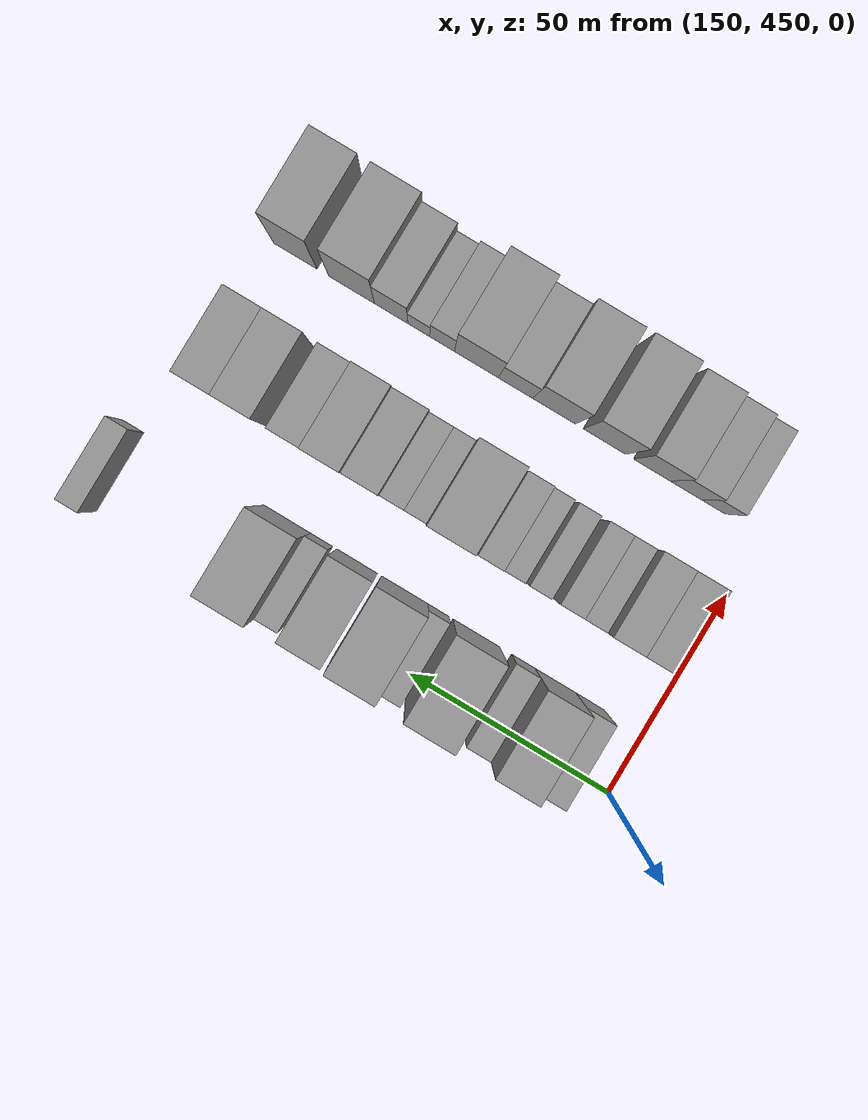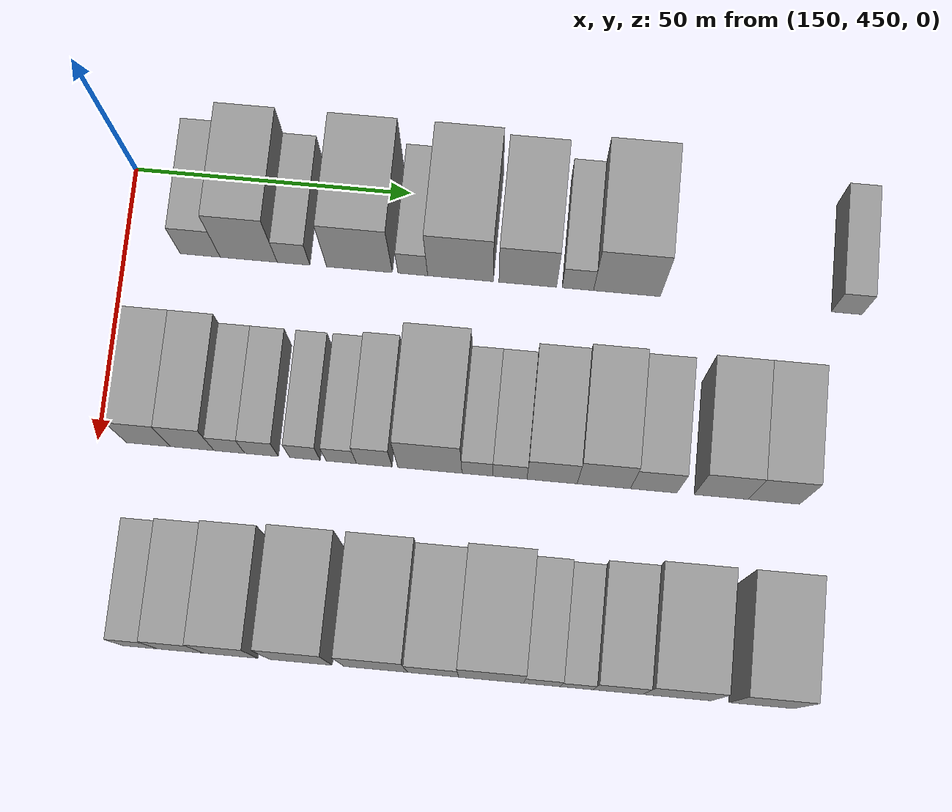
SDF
<sdf version="1.6">
 <world name="default">
  <model name="building_485">
   <static>1</static>
   <pose>155.0000 463.5801 0 0.000000 0.000000 0.000000</pose>
   <link name="link">
    <pose>0 0 7.50 0 0 0</pose>
    <collision name="collision"><geometry><box><size>20.0000 7.2073 15.0000</size></box></geometry></collision>
    <visual name="visual">
     <cast_shadows>0</cast_shadows>
     <geometry><box><size>20.0000 7.2073 15.0000</size></box></geometry>
     <material>
      <script>
       <uri>model://grey_wall/materials/scripts</uri>
       <uri>model://grey_wall/materials/textures</uri>
       <name>vrc/grey_wall</name>
      </script>
     </material>
    </visual>
   </link>
  </model>
  <model name="building_486">
   <static>1</static>
   <pose>155.0000 472.3223 0 0.000000 0.000000 0.000000</pose>
   <link name="link">
    <pose>0 0 12.00 0 0 0</pose>
    <collision name="collision"><geometry><box><size>20.0000 10.2771 24.0000</size></box></geometry></collision>
    <visual name="visual">
     <cast_shadows>0</cast_shadows>
     <geometry><box><size>20.0000 10.2771 24.0000</size></box></geometry>
     <material>
      <script>
       <uri>model://grey_wall/materials/scripts</uri>
       <uri>model://grey_wall/materials/textures</uri>
       <name>vrc/grey_wall</name>
      </script>
     </material>
    </visual>
   </link>
  </model>
  <model name="building_487">
   <static>1</static>
   <pose>155.0000 480.4054 0 0.000000 0.000000 0.000000</pose>
   <link name="link">
    <pose>0 0 6.00 0 0 0</pose>
    <collision name="collision"><geometry><box><size>20.0000 5.8889 12.0000</size></box></geometry></collision>
    <visual name="visual">
     <cast_shadows>0</cast_shadows>
     <geometry><box><size>20.0000 5.8889 12.0000</size></box></geometry>
     <material>
      <script>
       <uri>model://grey_wall/materials/scripts</uri>
       <uri>model://grey_wall/materials/textures</uri>
       <name>vrc/grey_wall</name>
      </script>
     </material>
    </visual>
   </link>
  </model>
  <model name="building_488">
   <static>1</static>
   <pose>155.0000 492.2635 0 0.000000 0.000000 0.000000</pose>
   <link name="link">
    <pose>0 0 12.00 0 0 0</pose>
    <collision name="collision"><geometry><box><size>20.0000 11.8274 24.0000</size></box></geometry></collision>
    <visual name="visual">
     <cast_shadows>0</cast_shadows>
     <geometry><box><size>20.0000 11.8274 24.0000</size></box></geometry>
     <material>
      <script>
       <uri>model://grey_wall/materials/scripts</uri>
       <uri>model://grey_wall/materials/textures</uri>
       <name>vrc/grey_wall</name>
      </script>
     </material>
    </visual>
   </link>
  </model>
  <model name="building_489">
   <static>1</static>
   <pose>155.0000 501.8370 0 0.000000 0.000000 0.000000</pose>
   <link name="link">
    <pose>0 0 6.00 0 0 0</pose>
    <collision name="collision"><geometry><box><size>20.0000 5.3195 12.0000</size></box></geometry></collision>
    <visual name="visual">
     <cast_shadows>0</cast_shadows>
     <geometry><box><size>20.0000 5.3195 12.0000</size></box></geometry>
     <material>
      <script>
       <uri>model://grey_wall/materials/scripts</uri>
       <uri>model://grey_wall/materials/textures</uri>
       <name>vrc/grey_wall</name>
      </script>
     </material>
    </visual>
   </link>
  </model>
  <model name="building_490">
   <static>1</static>
   <pose>155.0000 510.3837 0 0.000000 0.000000 0.000000</pose>
   <link name="link">
    <pose>0 0 12.00 0 0 0</pose>
    <collision name="collision"><geometry><box><size>20.0000 11.7738 24.0000</size></box></geometry></collision>
    <visual name="visual">
     <cast_shadows>0</cast_shadows>
     <geometry><box><size>20.0000 11.7738 24.0000</size></box></geometry>
     <material>
      <script>
       <uri>model://grey_wall/materials/scripts</uri>
       <uri>model://grey_wall/materials/textures</uri>
       <name>vrc/grey_wall</name>
      </script>
     </material>
    </visual>
   </link>
  </model>
  <model name="building_491">
   <static>1</static>
   <pose>155.0000 522.4294 0 0.000000 0.000000 0.000000</pose>
   <link name="link">
    <pose>0 0 10.50 0 0 0</pose>
    <collision name="collision"><geometry><box><size>20.0000 10.3175 21.0000</size></box></geometry></collision>
    <visual name="visual">
     <cast_shadows>0</cast_shadows>
     <geometry><box><size>20.0000 10.3175 21.0000</size></box></geometry>
     <material>
      <script>
       <uri>model://grey_wall/materials/scripts</uri>
       <uri>model://grey_wall/materials/textures</uri>
       <name>vrc/grey_wall</name>
      </script>
     </material>
    </visual>
   </link>
  </model>
  <model name="building_492">
   <static>1</static>
   <pose>155.0000 531.3951 0 0.000000 0.000000 0.000000</pose>
   <link name="link">
    <pose>0 0 6.00 0 0 0</pose>
    <collision name="collision"><geometry><box><size>20.0000 5.6139 12.0000</size></box></geometry></collision>
    <visual name="visual">
     <cast_shadows>0</cast_shadows>
     <geometry><box><size>20.0000 5.6139 12.0000</size></box></geometry>
     <material>
      <script>
       <uri>model://grey_wall/materials/scripts</uri>
       <uri>model://grey_wall/materials/textures</uri>
       <name>vrc/grey_wall</name>
      </script>
     </material>
    </visual>
   </link>
  </model>
  <model name="building_493">
   <static>1</static>
   <pose>155.0000 540.1591 0 0.000000 0.000000 0.000000</pose>
   <link name="link">
    <pose>0 0 12.00 0 0 0</pose>
    <collision name="collision"><geometry><box><size>20.0000 11.9141 24.0000</size></box></geometry></collision>
    <visual name="visual">
     <cast_shadows>0</cast_shadows>
     <geometry><box><size>20.0000 11.9141 24.0000</size></box></geometry>
     <material>
      <script>
       <uri>model://grey_wall/materials/scripts</uri>
       <uri>model://grey_wall/materials/textures</uri>
       <name>vrc/grey_wall</name>
      </script>
     </material>
    </visual>
   </link>
  </model>
  <model name="building_494">
   <static>1</static>
   <pose>155.0000 579.3486 0 0.000000 0.000000 0.000000</pose>
   <link name="link">
    <pose>0 0 6.00 0 0 0</pose>
    <collision name="collision"><geometry><box><size>20.0000 5.4883 12.0000</size></box></geometry></collision>
    <visual name="visual">
     <cast_shadows>0</cast_shadows>
     <geometry><box><size>20.0000 5.4883 12.0000</size></box></geometry>
     <material>
      <script>
       <uri>model://grey_wall/materials/scripts</uri>
       <uri>model://grey_wall/materials/textures</uri>
       <name>vrc/grey_wall</name>
      </script>
     </material>
    </visual>
   </link>
  </model>
  <model name="building_606">
   <static>1</static>
   <pose>190.0000 458.9555 0 0.000000 0.000000 0.000000</pose>
   <link name="link">
    <pose>0 0 9.00 0 0 0</pose>
    <collision name="collision"><geometry><box><size>20.0000 7.8009 18.0000</size></box></geometry></collision>
    <visual name="visual">
     <cast_shadows>0</cast_shadows>
     <geometry><box><size>20.0000 7.8009 18.0000</size></box></geometry>
     <material>
      <script>
       <uri>model://grey_wall/materials/scripts</uri>
       <uri>model://grey_wall/materials/textures</uri>
       <name>vrc/grey_wall</name>
      </script>
     </material>
    </visual>
   </link>
  </model>
  <model name="building_607">
   <static>1</static>
   <pose>190.0000 466.6846 0 0.000000 0.000000 0.000000</pose>
   <link name="link">
    <pose>0 0 9.00 0 0 0</pose>
    <collision name="collision"><geometry><box><size>20.0000 7.6573 18.0000</size></box></geometry></collision>
    <visual name="visual">
     <cast_shadows>0</cast_shadows>
     <geometry><box><size>20.0000 7.6573 18.0000</size></box></geometry>
     <material>
      <script>
       <uri>model://grey_wall/materials/scripts</uri>
       <uri>model://grey_wall/materials/textures</uri>
       <name>vrc/grey_wall</name>
      </script>
     </material>
    </visual>
   </link>
  </model>
  <model name="building_608">
   <static>1</static>
   <pose>190.0000 473.2176 0 0.000000 0.000000 0.000000</pose>
   <link name="link">
    <pose>0 0 6.00 0 0 0</pose>
    <collision name="collision"><geometry><box><size>20.0000 5.4086 12.0000</size></box></geometry></collision>
    <visual name="visual">
     <cast_shadows>0</cast_shadows>
     <geometry><box><size>20.0000 5.4086 12.0000</size></box></geometry>
     <material>
      <script>
       <uri>model://grey_wall/materials/scripts</uri>
       <uri>model://grey_wall/materials/textures</uri>
       <name>vrc/grey_wall</name>
      </script>
     </material>
    </visual>
   </link>
  </model>
  <model name="building_609">
   <static>1</static>
   <pose>190.0000 478.8675 0 0.000000 0.000000 0.000000</pose>
   <link name="link">
    <pose>0 0 6.00 0 0 0</pose>
    <collision name="collision"><geometry><box><size>20.0000 5.8913 12.0000</size></box></geometry></collision>
    <visual name="visual">
     <cast_shadows>0</cast_shadows>
     <geometry><box><size>20.0000 5.8913 12.0000</size></box></geometry>
     <material>
      <script>
       <uri>model://grey_wall/materials/scripts</uri>
       <uri>model://grey_wall/materials/textures</uri>
       <name>vrc/grey_wall</name>
      </script>
     </material>
    </visual>
   </link>
  </model>
  <model name="building_610">
   <static>1</static>
   <pose>190.0000 486.4945 0 0.000000 0.000000 0.000000</pose>
   <link name="link">
    <pose>0 0 6.00 0 0 0</pose>
    <collision name="collision"><geometry><box><size>20.0000 5.3626 12.0000</size></box></geometry></collision>
    <visual name="visual">
     <cast_shadows>0</cast_shadows>
     <geometry><box><size>20.0000 5.3626 12.0000</size></box></geometry>
     <material>
      <script>
       <uri>model://grey_wall/materials/scripts</uri>
       <uri>model://grey_wall/materials/textures</uri>
       <name>vrc/grey_wall</name>
      </script>
     </material>
    </visual>
   </link>
  </model>
  <model name="building_611">
   <static>1</static>
   <pose>190.0000 492.8447 0 0.000000 0.000000 0.000000</pose>
   <link name="link">
    <pose>0 0 6.00 0 0 0</pose>
    <collision name="collision"><geometry><box><size>20.0000 5.3379 12.0000</size></box></geometry></collision>
    <visual name="visual">
     <cast_shadows>0</cast_shadows>
     <geometry><box><size>20.0000 5.3379 12.0000</size></box></geometry>
     <material>
      <script>
       <uri>model://grey_wall/materials/scripts</uri>
       <uri>model://grey_wall/materials/textures</uri>
       <name>vrc/grey_wall</name>
      </script>
     </material>
    </visual>
   </link>
  </model>
  <model name="building_612">
   <static>1</static>
   <pose>190.0000 498.6452 0 0.000000 0.000000 0.000000</pose>
   <link name="link">
    <pose>0 0 7.50 0 0 0</pose>
    <collision name="collision"><geometry><box><size>20.0000 6.2629 15.0000</size></box></geometry></collision>
    <visual name="visual">
     <cast_shadows>0</cast_shadows>
     <geometry><box><size>20.0000 6.2629 15.0000</size></box></geometry>
     <material>
      <script>
       <uri>model://grey_wall/materials/scripts</uri>
       <uri>model://grey_wall/materials/textures</uri>
       <name>vrc/grey_wall</name>
      </script>
     </material>
    </visual>
   </link>
  </model>
  <model name="building_613">
   <static>1</static>
   <pose>190.0000 508.3809 0 0.000000 0.000000 0.000000</pose>
   <link name="link">
    <pose>0 0 12.00 0 0 0</pose>
    <collision name="collision"><geometry><box><size>20.0000 11.2085 24.0000</size></box></geometry></collision>
    <visual name="visual">
     <cast_shadows>0</cast_shadows>
     <geometry><box><size>20.0000 11.2085 24.0000</size></box></geometry>
     <material>
      <script>
       <uri>model://grey_wall/materials/scripts</uri>
       <uri>model://grey_wall/materials/textures</uri>
       <name>vrc/grey_wall</name>
      </script>
     </material>
    </visual>
   </link>
  </model>
  <model name="building_614">
   <static>1</static>
   <pose>190.0000 516.6739 0 0.000000 0.000000 0.000000</pose>
   <link name="link">
    <pose>0 0 6.00 0 0 0</pose>
    <collision name="collision"><geometry><box><size>20.0000 5.3775 12.0000</size></box></geometry></collision>
    <visual name="visual">
     <cast_shadows>0</cast_shadows>
     <geometry><box><size>20.0000 5.3775 12.0000</size></box></geometry>
     <material>
      <script>
       <uri>model://grey_wall/materials/scripts</uri>
       <uri>model://grey_wall/materials/textures</uri>
       <name>vrc/grey_wall</name>
      </script>
     </material>
    </visual>
   </link>
  </model>
  <model name="building_615">
   <static>1</static>
   <pose>190.0000 522.3495 0 0.000000 0.000000 0.000000</pose>
   <link name="link">
    <pose>0 0 6.00 0 0 0</pose>
    <collision name="collision"><geometry><box><size>20.0000 5.9738 12.0000</size></box></geometry></collision>
    <visual name="visual">
     <cast_shadows>0</cast_shadows>
     <geometry><box><size>20.0000 5.9738 12.0000</size></box></geometry>
     <material>
      <script>
       <uri>model://grey_wall/materials/scripts</uri>
       <uri>model://grey_wall/materials/textures</uri>
       <name>vrc/grey_wall</name>
      </script>
     </material>
    </visual>
   </link>
  </model>
  <model name="building_616">
   <static>1</static>
   <pose>190.0000 529.7157 0 0.000000 0.000000 0.000000</pose>
   <link name="link">
    <pose>0 0 9.00 0 0 0</pose>
    <collision name="collision"><geometry><box><size>20.0000 8.7585 18.0000</size></box></geometry></collision>
    <visual name="visual">
     <cast_shadows>0</cast_shadows>
     <geometry><box><size>20.0000 8.7585 18.0000</size></box></geometry>
     <material>
      <script>
       <uri>model://grey_wall/materials/scripts</uri>
       <uri>model://grey_wall/materials/textures</uri>
       <name>vrc/grey_wall</name>
      </script>
     </material>
    </visual>
   </link>
  </model>
  <model name="building_617">
   <static>1</static>
   <pose>190.0000 538.7590 0 0.000000 0.000000 0.000000</pose>
   <link name="link">
    <pose>0 0 10.50 0 0 0</pose>
    <collision name="collision"><geometry><box><size>20.0000 9.3282 21.0000</size></box></geometry></collision>
    <visual name="visual">
     <cast_shadows>0</cast_shadows>
     <geometry><box><size>20.0000 9.3282 21.0000</size></box></geometry>
     <material>
      <script>
       <uri>model://grey_wall/materials/scripts</uri>
       <uri>model://grey_wall/materials/textures</uri>
       <name>vrc/grey_wall</name>
      </script>
     </material>
    </visual>
   </link>
  </model>
  <model name="building_618">
   <static>1</static>
   <pose>190.0000 547.4751 0 0.000000 0.000000 0.000000</pose>
   <link name="link">
    <pose>0 0 9.00 0 0 0</pose>
    <collision name="collision"><geometry><box><size>20.0000 8.1040 18.0000</size></box></geometry></collision>
    <visual name="visual">
     <cast_shadows>0</cast_shadows>
     <geometry><box><size>20.0000 8.1040 18.0000</size></box></geometry>
     <material>
      <script>
       <uri>model://grey_wall/materials/scripts</uri>
       <uri>model://grey_wall/materials/textures</uri>
       <name>vrc/grey_wall</name>
      </script>
     </material>
    </visual>
   </link>
  </model>
  <model name="building_619">
   <static>1</static>
   <pose>190.0000 559.2223 0 0.000000 0.000000 0.000000</pose>
   <link name="link">
    <pose>0 0 10.50 0 0 0</pose>
    <collision name="collision"><geometry><box><size>20.0000 9.3904 21.0000</size></box></geometry></collision>
    <visual name="visual">
     <cast_shadows>0</cast_shadows>
     <geometry><box><size>20.0000 9.3904 21.0000</size></box></geometry>
     <material>
      <script>
       <uri>model://grey_wall/materials/scripts</uri>
       <uri>model://grey_wall/materials/textures</uri>
       <name>vrc/grey_wall</name>
      </script>
     </material>
    </visual>
   </link>
  </model>
  <model name="building_620">
   <static>1</static>
   <pose>190.0000 568.4161 0 0.000000 0.000000 0.000000</pose>
   <link name="link">
    <pose>0 0 10.50 0 0 0</pose>
    <collision name="collision"><geometry><box><size>20.0000 8.9972 21.0000</size></box></geometry></collision>
    <visual name="visual">
     <cast_shadows>0</cast_shadows>
     <geometry><box><size>20.0000 8.9972 21.0000</size></box></geometry>
     <material>
      <script>
       <uri>model://grey_wall/materials/scripts</uri>
       <uri>model://grey_wall/materials/textures</uri>
       <name>vrc/grey_wall</name>
      </script>
     </material>
    </visual>
   </link>
  </model>
  <model name="building_734">
   <static>1</static>
   <pose>225.0000 462.1828 0 0.000000 0.000000 0.000000</pose>
   <link name="link">
    <pose>0 0 7.50 0 0 0</pose>
    <collision name="collision"><geometry><box><size>20.0000 6.0497 15.0000</size></box></geometry></collision>
    <visual name="visual">
     <cast_shadows>0</cast_shadows>
     <geometry><box><size>20.0000 6.0497 15.0000</size></box></geometry>
     <material>
      <script>
       <uri>model://grey_wall/materials/scripts</uri>
       <uri>model://grey_wall/materials/textures</uri>
       <name>vrc/grey_wall</name>
      </script>
     </material>
    </visual>
   </link>
  </model>
  <model name="building_735">
   <static>1</static>
   <pose>225.0000 469.1781 0 0.000000 0.000000 0.000000</pose>
   <link name="link">
    <pose>0 0 9.00 0 0 0</pose>
    <collision name="collision"><geometry><box><size>20.0000 7.9407 18.0000</size></box></geometry></collision>
    <visual name="visual">
     <cast_shadows>0</cast_shadows>
     <geometry><box><size>20.0000 7.9407 18.0000</size></box></geometry>
     <material>
      <script>
       <uri>model://grey_wall/materials/scripts</uri>
       <uri>model://grey_wall/materials/textures</uri>
       <name>vrc/grey_wall</name>
      </script>
     </material>
    </visual>
   </link>
  </model>
  <model name="building_736">
   <static>1</static>
   <pose>225.0000 477.7752 0 0.000000 0.000000 0.000000</pose>
   <link name="link">
    <pose>0 0 10.50 0 0 0</pose>
    <collision name="collision"><geometry><box><size>20.0000 9.2535 21.0000</size></box></geometry></collision>
    <visual name="visual">
     <cast_shadows>0</cast_shadows>
     <geometry><box><size>20.0000 9.2535 21.0000</size></box></geometry>
     <material>
      <script>
       <uri>model://grey_wall/materials/scripts</uri>
       <uri>model://grey_wall/materials/textures</uri>
       <name>vrc/grey_wall</name>
      </script>
     </material>
    </visual>
   </link>
  </model>
  <model name="building_737">
   <static>1</static>
   <pose>225.0000 489.7806 0 0.000000 0.000000 0.000000</pose>
   <link name="link">
    <pose>0 0 12.00 0 0 0</pose>
    <collision name="collision"><geometry><box><size>20.0000 10.7574 24.0000</size></box></geometry></collision>
    <visual name="visual">
     <cast_shadows>0</cast_shadows>
     <geometry><box><size>20.0000 10.7574 24.0000</size></box></geometry>
     <material>
      <script>
       <uri>model://grey_wall/materials/scripts</uri>
       <uri>model://grey_wall/materials/textures</uri>
       <name>vrc/grey_wall</name>
      </script>
     </material>
    </visual>
   </link>
  </model>
  <model name="building_738">
   <static>1</static>
   <pose>225.0000 502.6153 0 0.000000 0.000000 0.000000</pose>
   <link name="link">
    <pose>0 0 12.00 0 0 0</pose>
    <collision name="collision"><geometry><box><size>20.0000 10.9120 24.0000</size></box></geometry></collision>
    <visual name="visual">
     <cast_shadows>0</cast_shadows>
     <geometry><box><size>20.0000 10.9120 24.0000</size></box></geometry>
     <material>
      <script>
       <uri>model://grey_wall/materials/scripts</uri>
       <uri>model://grey_wall/materials/textures</uri>
       <name>vrc/grey_wall</name>
      </script>
     </material>
    </visual>
   </link>
  </model>
  <model name="building_739">
   <static>1</static>
   <pose>225.0000 512.4243 0 0.000000 0.000000 0.000000</pose>
   <link name="link">
    <pose>0 0 9.00 0 0 0</pose>
    <collision name="collision"><geometry><box><size>20.0000 8.7060 18.0000</size></box></geometry></collision>
    <visual name="visual">
     <cast_shadows>0</cast_shadows>
     <geometry><box><size>20.0000 8.7060 18.0000</size></box></geometry>
     <material>
      <script>
       <uri>model://grey_wall/materials/scripts</uri>
       <uri>model://grey_wall/materials/textures</uri>
       <name>vrc/grey_wall</name>
      </script>
     </material>
    </visual>
   </link>
  </model>
  <model name="building_740">
   <static>1</static>
   <pose>225.0000 522.3235 0 0.000000 0.000000 0.000000</pose>
   <link name="link">
    <pose>0 0 12.00 0 0 0</pose>
    <collision name="collision"><geometry><box><size>20.0000 11.0924 24.0000</size></box></geometry></collision>
    <visual name="visual">
     <cast_shadows>0</cast_shadows>
     <geometry><box><size>20.0000 11.0924 24.0000</size></box></geometry>
     <material>
      <script>
       <uri>model://grey_wall/materials/scripts</uri>
       <uri>model://grey_wall/materials/textures</uri>
       <name>vrc/grey_wall</name>
      </script>
     </material>
    </visual>
   </link>
  </model>
  <model name="building_741">
   <static>1</static>
   <pose>225.0000 531.0058 0 0.000000 0.000000 0.000000</pose>
   <link name="link">
    <pose>0 0 7.50 0 0 0</pose>
    <collision name="collision"><geometry><box><size>20.0000 6.2723 15.0000</size></box></geometry></collision>
    <visual name="visual">
     <cast_shadows>0</cast_shadows>
     <geometry><box><size>20.0000 6.2723 15.0000</size></box></geometry>
     <material>
      <script>
       <uri>model://grey_wall/materials/scripts</uri>
       <uri>model://grey_wall/materials/textures</uri>
       <name>vrc/grey_wall</name>
      </script>
     </material>
    </visual>
   </link>
  </model>
  <model name="building_742">
   <static>1</static>
   <pose>225.0000 536.9173 0 0.000000 0.000000 0.000000</pose>
   <link name="link">
    <pose>0 0 6.00 0 0 0</pose>
    <collision name="collision"><geometry><box><size>20.0000 5.5505 12.0000</size></box></geometry></collision>
    <visual name="visual">
     <cast_shadows>0</cast_shadows>
     <geometry><box><size>20.0000 5.5505 12.0000</size></box></geometry>
     <material>
      <script>
       <uri>model://grey_wall/materials/scripts</uri>
       <uri>model://grey_wall/materials/textures</uri>
       <name>vrc/grey_wall</name>
      </script>
     </material>
    </visual>
   </link>
  </model>
  <model name="building_743">
   <static>1</static>
   <pose>225.0000 543.9113 0 0.000000 0.000000 0.000000</pose>
   <link name="link">
    <pose>0 0 9.00 0 0 0</pose>
    <collision name="collision"><geometry><box><size>20.0000 8.4376 18.0000</size></box></geometry></collision>
    <visual name="visual">
     <cast_shadows>0</cast_shadows>
     <geometry><box><size>20.0000 8.4376 18.0000</size></box></geometry>
     <material>
      <script>
       <uri>model://grey_wall/materials/scripts</uri>
       <uri>model://grey_wall/materials/textures</uri>
       <name>vrc/grey_wall</name>
      </script>
     </material>
    </visual>
   </link>
  </model>
  <model name="building_744">
   <static>1</static>
   <pose>225.0000 553.9523 0 0.000000 0.000000 0.000000</pose>
   <link name="link">
    <pose>0 0 12.00 0 0 0</pose>
    <collision name="collision"><geometry><box><size>20.0000 11.6444 24.0000</size></box></geometry></collision>
    <visual name="visual">
     <cast_shadows>0</cast_shadows>
     <geometry><box><size>20.0000 11.6444 24.0000</size></box></geometry>
     <material>
      <script>
       <uri>model://grey_wall/materials/scripts</uri>
       <uri>model://grey_wall/materials/textures</uri>
       <name>vrc/grey_wall</name>
      </script>
     </material>
    </visual>
   </link>
  </model>
  <model name="building_745">
   <static>1</static>
   <pose>225.0000 568.2671 0 0.000000 0.000000 0.000000</pose>
   <link name="link">
    <pose>0 0 12.00 0 0 0</pose>
    <collision name="collision"><geometry><box><size>20.0000 10.9852 24.0000</size></box></geometry></collision>
    <visual name="visual">
     <cast_shadows>0</cast_shadows>
     <geometry><box><size>20.0000 10.9852 24.0000</size></box></geometry>
     <material>
      <script>
       <uri>model://grey_wall/materials/scripts</uri>
       <uri>model://grey_wall/materials/textures</uri>
       <name>vrc/grey_wall</name>
      </script>
     </material>
    </visual>
   </link>
  </model>
 </world>
</sdf>
